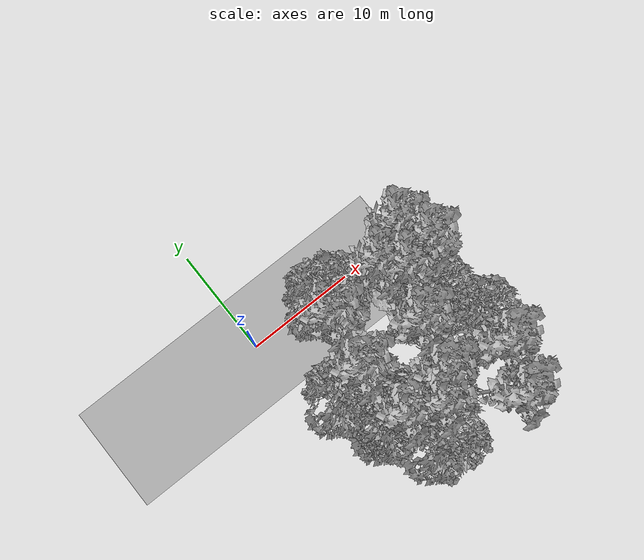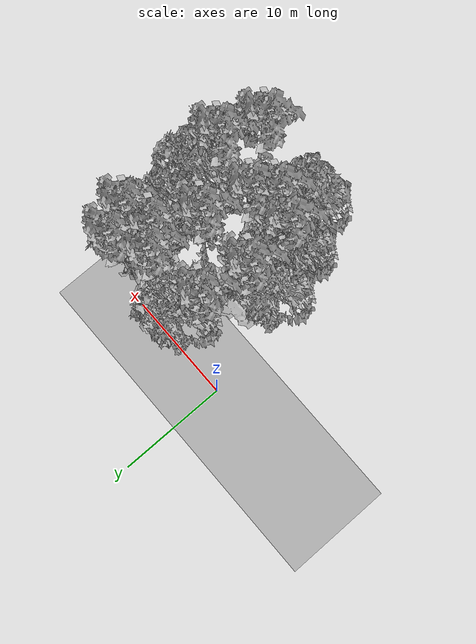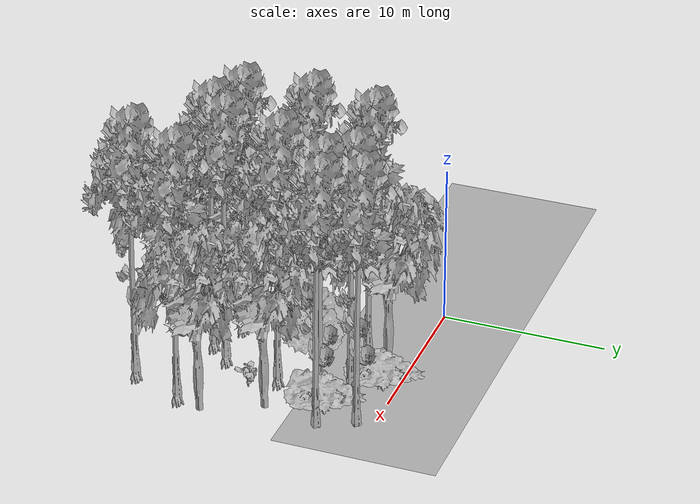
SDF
<sdf version="1.7">
 <world name="default">
  <model name="ground_plane">
   <static>1</static>
   <link name="link">
    <collision name="collision">
     <pose>-50 0 0 0 -0 0</pose>
     <geometry><plane><normal>0 0 1</normal><size>100 100</size></plane></geometry>
     <surface><contact><ode><min_depth>0.01</min_depth><max_vel>0</max_vel></ode></contact></surface>
    </collision>
    <visual name="grass">
     <cast_shadows>0</cast_shadows>
     <geometry>
      <mesh>
       <scale>0.5814285714285714 0.18142857142857144 0.1</scale>
       <uri>file://grass_plane/meshes/grass_plane.dae</uri>
      </mesh>
     </geometry>
    </visual>
   </link>
  </model>
  <model name="Tree 14">
   <static>1</static>
   <pose>4.569066756161291 -6.927527562204798 0 1.57079 -0 0</pose>
   <link name="link">
    <collision name="collision">
     <geometry><mesh><scale>3.5 5 3.5</scale><uri>model://tree_9/meshes/tree_9.obj</uri></mesh></geometry>
    </collision>
    <visual name="visual">
     <geometry><mesh><scale>3.5 5 3.5</scale><uri>model://tree_9/meshes/tree_9.obj</uri></mesh></geometry>
    </visual>
   </link>
  </model>
  <model name="Tree 23">
   <static>1</static>
   <pose>4.654935944965949 -10.912607069084592 0 1.57079 -0 0</pose>
   <link name="link">
    <collision name="collision">
     <geometry><mesh><scale>3.5 5 3.5</scale><uri>model://tree_2/meshes/tree_2.obj</uri></mesh></geometry>
    </collision>
    <visual name="visual">
     <geometry><mesh><scale>3.5 5 3.5</scale><uri>model://tree_2/meshes/tree_2.obj</uri></mesh></geometry>
    </visual>
   </link>
  </model>
  <model name="Tree 32">
   <static>1</static>
   <pose>8.5975826116087 -10.593575960187067 0 1.57079 -0 0</pose>
   <link name="link">
    <collision name="collision">
     <geometry><mesh><scale>3.5 5 3.5</scale><uri>model://tree_9/meshes/tree_9.obj</uri></mesh></geometry>
    </collision>
    <visual name="visual">
     <geometry><mesh><scale>3.5 5 3.5</scale><uri>model://tree_9/meshes/tree_9.obj</uri></mesh></geometry>
    </visual>
   </link>
  </model>
  <model name="Tree 37">
   <static>1</static>
   <pose>6.025390160816748 -6.075086817014782 0 1.57079 -0 0</pose>
   <link name="link">
    <collision name="collision">
     <geometry><mesh><scale>3 2 3</scale><uri>model://tree_3/meshes/tree_3.obj</uri></mesh></geometry>
    </collision>
    <visual name="visual">
     <geometry><mesh><scale>3 2 3</scale><uri>model://tree_3/meshes/tree_3.obj</uri></mesh></geometry>
    </visual>
   </link>
  </model>
  <model name="Tree 47">
   <static>1</static>
   <pose>13.457497762932235 -3.04381755750914 0 1.57079 -0 0</pose>
   <link name="link">
    <collision name="collision">
     <geometry><mesh><scale>3.5 5 3.5</scale><uri>model://tree_9/meshes/tree_9.obj</uri></mesh></geometry>
    </collision>
    <visual name="visual">
     <geometry><mesh><scale>3.5 5 3.5</scale><uri>model://tree_9/meshes/tree_9.obj</uri></mesh></geometry>
    </visual>
   </link>
  </model>
  <model name="Tree 56">
   <static>1</static>
   <pose>12.520588069016654 -0.9440960554457138 0 1.57079 -0 0</pose>
   <link name="link">
    <collision name="collision">
     <geometry><mesh><scale>3.5 5 3.5</scale><uri>model://tree_9/meshes/tree_9.obj</uri></mesh></geometry>
    </collision>
    <visual name="visual">
     <geometry><mesh><scale>3.5 5 3.5</scale><uri>model://tree_9/meshes/tree_9.obj</uri></mesh></geometry>
    </visual>
   </link>
  </model>
  <model name="Tree 66">
   <static>1</static>
   <pose>4.438238333443046 -11.437231026014384 0 1.57079 -0 0</pose>
   <link name="link">
    <collision name="collision">
     <geometry><mesh><scale>3.5 5 3.5</scale><uri>model://tree_2/meshes/tree_2.obj</uri></mesh></geometry>
    </collision>
    <visual name="visual">
     <geometry><mesh><scale>3.5 5 3.5</scale><uri>model://tree_2/meshes/tree_2.obj</uri></mesh></geometry>
    </visual>
   </link>
  </model>
  <model name="Tree 75">
   <static>1</static>
   <pose>11.308763623625133 -3.6439339695906376 0 1.57079 -0 0</pose>
   <link name="link">
    <collision name="collision">
     <geometry><mesh><scale>3.5 5 3.5</scale><uri>model://tree_9/meshes/tree_9.obj</uri></mesh></geometry>
    </collision>
    <visual name="visual">
     <geometry><mesh><scale>3.5 5 3.5</scale><uri>model://tree_9/meshes/tree_9.obj</uri></mesh></geometry>
    </visual>
   </link>
  </model>
  <model name="Tree 80">
   <static>1</static>
   <pose>4.311432777196515 -6.7090133400148435 0 1.57079 -0 0</pose>
   <link name="link">
    <collision name="collision">
     <geometry><mesh><scale>3 2 3</scale><uri>model://tree_3/meshes/tree_3.obj</uri></mesh></geometry>
    </collision>
    <visual name="visual">
     <geometry><mesh><scale>3 2 3</scale><uri>model://tree_3/meshes/tree_3.obj</uri></mesh></geometry>
    </visual>
   </link>
  </model>
  <model name="Tree 85">
   <static>1</static>
   <pose>2.9899084321088125 -7.834050874167126 0 1.57079 -0 0</pose>
   <link name="link">
    <collision name="collision">
     <geometry><mesh><scale>3.5 5 3.5</scale><uri>model://tree_2/meshes/tree_2.obj</uri></mesh></geometry>
    </collision>
    <visual name="visual">
     <geometry><mesh><scale>3.5 5 3.5</scale><uri>model://tree_2/meshes/tree_2.obj</uri></mesh></geometry>
    </visual>
   </link>
  </model>
  <model name="Tree 89">
   <static>1</static>
   <pose>13.33047997791639 -11.648013663690552 0 1.57079 -0 0</pose>
   <link name="link">
    <collision name="collision">
     <geometry><mesh><scale>3.5 5 3.5</scale><uri>model://tree_9/meshes/tree_9.obj</uri></mesh></geometry>
    </collision>
    <visual name="visual">
     <geometry><mesh><scale>3.5 5 3.5</scale><uri>model://tree_9/meshes/tree_9.obj</uri></mesh></geometry>
    </visual>
   </link>
  </model>
  <model name="Tree 95">
   <static>1</static>
   <pose>8.419578460327799 -0.9687949061502561 0 1.57079 -0 0</pose>
   <link name="link">
    <collision name="collision">
     <geometry><mesh><scale>4 2.5 4</scale><uri>model://tree_1/meshes/tree_1.obj</uri></mesh></geometry>
    </collision>
    <visual name="visual">
     <geometry><mesh><scale>4 2.5 4</scale><uri>model://tree_1/meshes/tree_1.obj</uri></mesh></geometry>
    </visual>
   </link>
  </model>
  <model name="Tree 102">
   <static>1</static>
   <pose>14.133269276098709 -9.88987303273072 0 1.57079 -0 0</pose>
   <link name="link">
    <collision name="collision">
     <geometry><mesh><scale>3.5 5 3.5</scale><uri>model://tree_2/meshes/tree_2.obj</uri></mesh></geometry>
    </collision>
    <visual name="visual">
     <geometry><mesh><scale>3.5 5 3.5</scale><uri>model://tree_2/meshes/tree_2.obj</uri></mesh></geometry>
    </visual>
   </link>
  </model>
  <model name="Tree 157">
   <static>1</static>
   <pose>11.925059895667744 -14.887578873779347 0 1.57079 -0 0</pose>
   <link name="link">
    <collision name="collision">
     <geometry><mesh><scale>3.5 5 3.5</scale><uri>model://tree_9/meshes/tree_9.obj</uri></mesh></geometry>
    </collision>
    <visual name="visual">
     <geometry><mesh><scale>3.5 5 3.5</scale><uri>model://tree_9/meshes/tree_9.obj</uri></mesh></geometry>
    </visual>
   </link>
  </model>
  <model name="Tree 161">
   <static>1</static>
   <pose>9.648255771273476 -6.892518457987766 0 1.57079 -0 0</pose>
   <link name="link">
    <collision name="collision">
     <geometry><mesh><scale>3.5 5 3.5</scale><uri>model://tree_9/meshes/tree_9.obj</uri></mesh></geometry>
    </collision>
    <visual name="visual">
     <geometry><mesh><scale>3.5 5 3.5</scale><uri>model://tree_9/meshes/tree_9.obj</uri></mesh></geometry>
    </visual>
   </link>
  </model>
  <model name="Tree 163">
   <static>1</static>
   <pose>12.601283619228148 -6.508564334198621 0 1.57079 -0 0</pose>
   <link name="link">
    <collision name="collision">
     <geometry><mesh><scale>3.5 5 3.5</scale><uri>model://tree_2/meshes/tree_2.obj</uri></mesh></geometry>
    </collision>
    <visual name="visual">
     <geometry><mesh><scale>3.5 5 3.5</scale><uri>model://tree_2/meshes/tree_2.obj</uri></mesh></geometry>
    </visual>
   </link>
  </model>
  <model name="Tree 174">
   <static>1</static>
   <pose>3.9375984688928938 -12.934710541625368 0 1.57079 -0 0</pose>
   <link name="link">
    <collision name="collision">
     <geometry><mesh><scale>3 2 3</scale><uri>model://tree_3/meshes/tree_3.obj</uri></mesh></geometry>
    </collision>
    <visual name="visual">
     <geometry><mesh><scale>3 2 3</scale><uri>model://tree_3/meshes/tree_3.obj</uri></mesh></geometry>
    </visual>
   </link>
  </model>
  <model name="Tree 207">
   <static>1</static>
   <pose>5.199383241210839 -2.9651182715599393 0 1.57079 -0 0</pose>
   <link name="link">
    <collision name="collision">
     <geometry><mesh><scale>3.5 5 3.5</scale><uri>model://tree_9/meshes/tree_9.obj</uri></mesh></geometry>
    </collision>
    <visual name="visual">
     <geometry><mesh><scale>3.5 5 3.5</scale><uri>model://tree_9/meshes/tree_9.obj</uri></mesh></geometry>
    </visual>
   </link>
  </model>
  <model name="Tree 212">
   <static>1</static>
   <pose>11.822765539103862 -3.2951955829843875 0 1.57079 -0 0</pose>
   <link name="link">
    <collision name="collision">
     <geometry><mesh><scale>4 2.5 4</scale><uri>model://tree_1/meshes/tree_1.obj</uri></mesh></geometry>
    </collision>
    <visual name="visual">
     <geometry><mesh><scale>4 2.5 4</scale><uri>model://tree_1/meshes/tree_1.obj</uri></mesh></geometry>
    </visual>
   </link>
  </model>
  <model name="Tree 219">
   <static>1</static>
   <pose>6.482015216775096 -14.827599374625827 0 1.57079 -0 0</pose>
   <link name="link">
    <collision name="collision">
     <geometry><mesh><scale>3.5 5 3.5</scale><uri>model://tree_2/meshes/tree_2.obj</uri></mesh></geometry>
    </collision>
    <visual name="visual">
     <geometry><mesh><scale>3.5 5 3.5</scale><uri>model://tree_2/meshes/tree_2.obj</uri></mesh></geometry>
    </visual>
   </link>
  </model>
  <model name="Tree 225">
   <static>1</static>
   <pose>6.3169624396504815 -1.26821272281353 0 1.57079 -0 0</pose>
   <link name="link">
    <collision name="collision">
     <geometry><mesh><scale>3.5 5 3.5</scale><uri>model://tree_2/meshes/tree_2.obj</uri></mesh></geometry>
    </collision>
    <visual name="visual">
     <geometry><mesh><scale>3.5 5 3.5</scale><uri>model://tree_2/meshes/tree_2.obj</uri></mesh></geometry>
    </visual>
   </link>
  </model>
  <model name="Tree 275">
   <static>1</static>
   <pose>5.114478280538734 -10.984201528812994 0 1.57079 -0 0</pose>
   <link name="link">
    <collision name="collision">
     <geometry><mesh><scale>3.5 5 3.5</scale><uri>model://tree_9/meshes/tree_9.obj</uri></mesh></geometry>
    </collision>
    <visual name="visual">
     <geometry><mesh><scale>3.5 5 3.5</scale><uri>model://tree_9/meshes/tree_9.obj</uri></mesh></geometry>
    </visual>
   </link>
  </model>
  <model name="Tree 276">
   <static>1</static>
   <pose>10.008237127388092 -2.272666695229189 0 1.57079 -0 0</pose>
   <link name="link">
    <collision name="collision">
     <geometry><mesh><scale>3.5 5 3.5</scale><uri>model://tree_9/meshes/tree_9.obj</uri></mesh></geometry>
    </collision>
    <visual name="visual">
     <geometry><mesh><scale>3.5 5 3.5</scale><uri>model://tree_9/meshes/tree_9.obj</uri></mesh></geometry>
    </visual>
   </link>
  </model>
  <model name="Tree 287">
   <static>1</static>
   <pose>7.396452006635307 -11.886963082459129 0 1.57079 -0 0</pose>
   <link name="link">
    <collision name="collision">
     <geometry><mesh><scale>3.5 5 3.5</scale><uri>model://tree_9/meshes/tree_9.obj</uri></mesh></geometry>
    </collision>
    <visual name="visual">
     <geometry><mesh><scale>3.5 5 3.5</scale><uri>model://tree_9/meshes/tree_9.obj</uri></mesh></geometry>
    </visual>
   </link>
  </model>
  <model name="Bush 1">
   <static>1</static>
   <pose>11.110902930231092 -8.13849014348511 0 1.57079 -0 0</pose>
   <link name="link">
    <collision name="collision">
     <geometry><mesh><scale>2 2 2</scale><uri>model://bush_0/meshes/bush_0.obj</uri></mesh></geometry>
     <surface><contact><collide_without_contact>false</collide_without_contact></contact></surface>
    </collision>
    <visual name="visual">
     <geometry><mesh><scale>2 2 2</scale><uri>model://bush_0/meshes/bush_0.obj</uri></mesh></geometry>
    </visual>
   </link>
  </model>
 </world>
</sdf>
